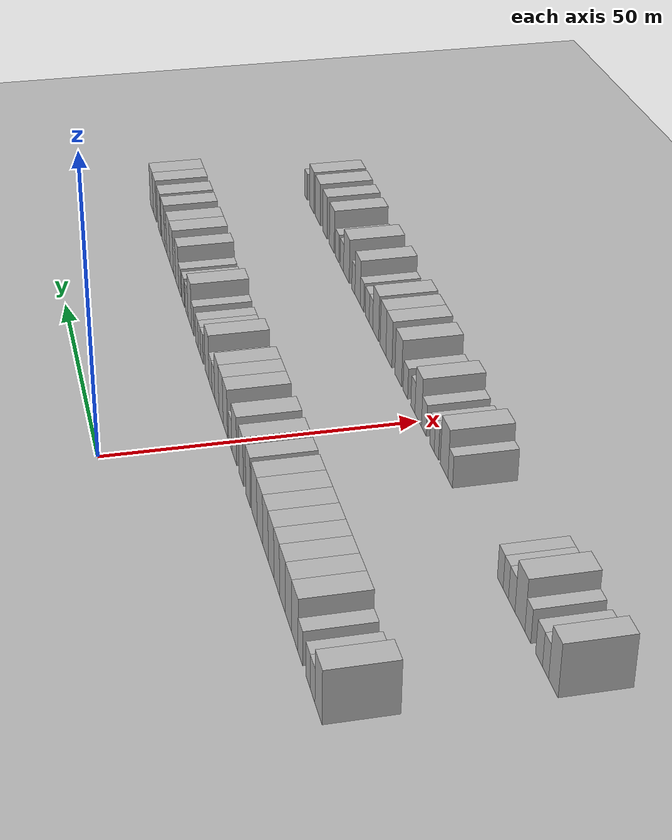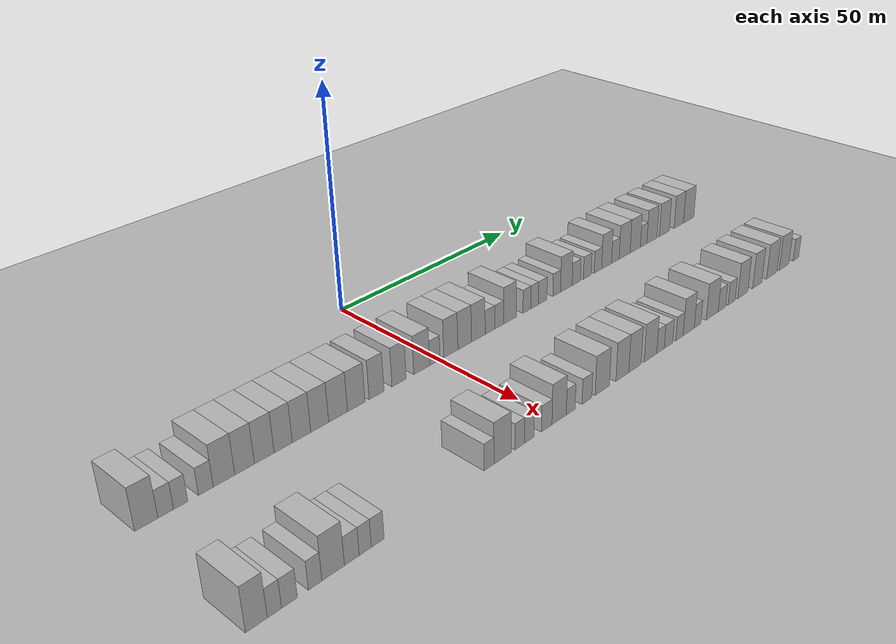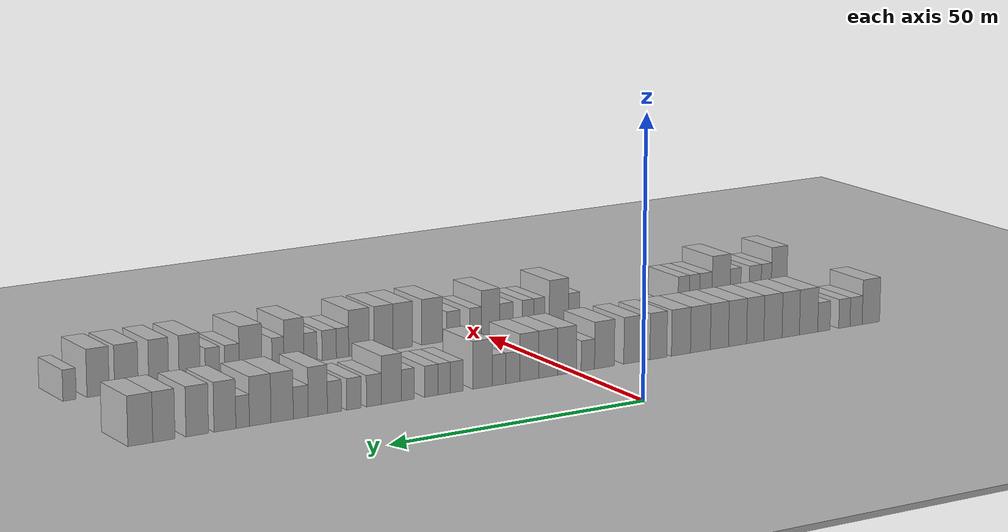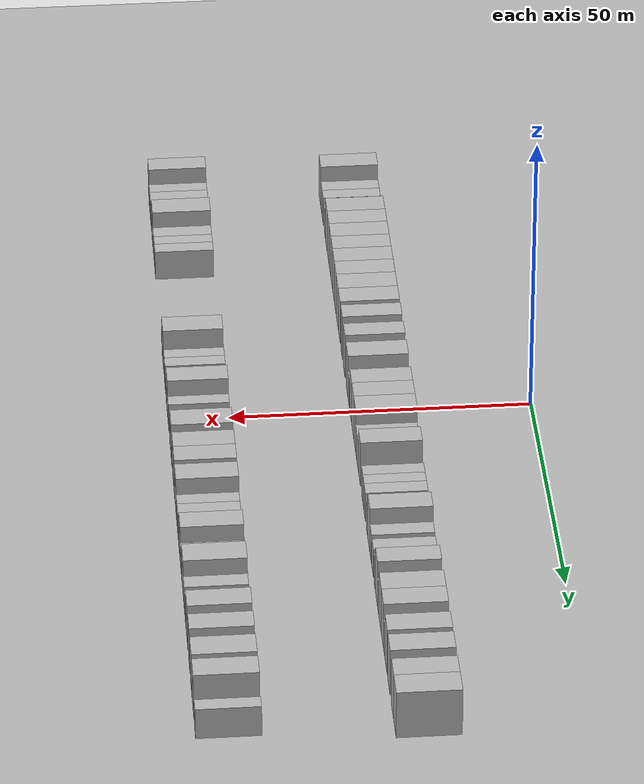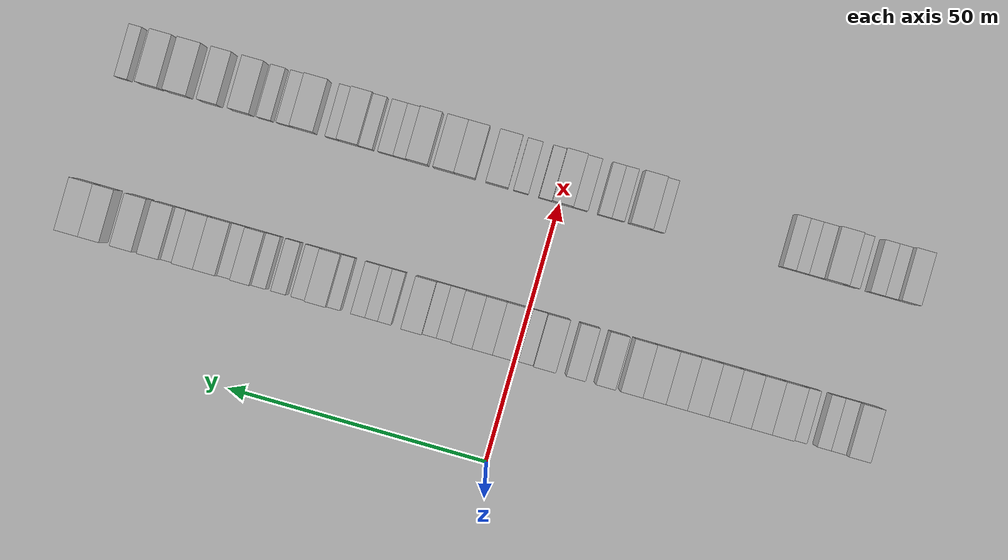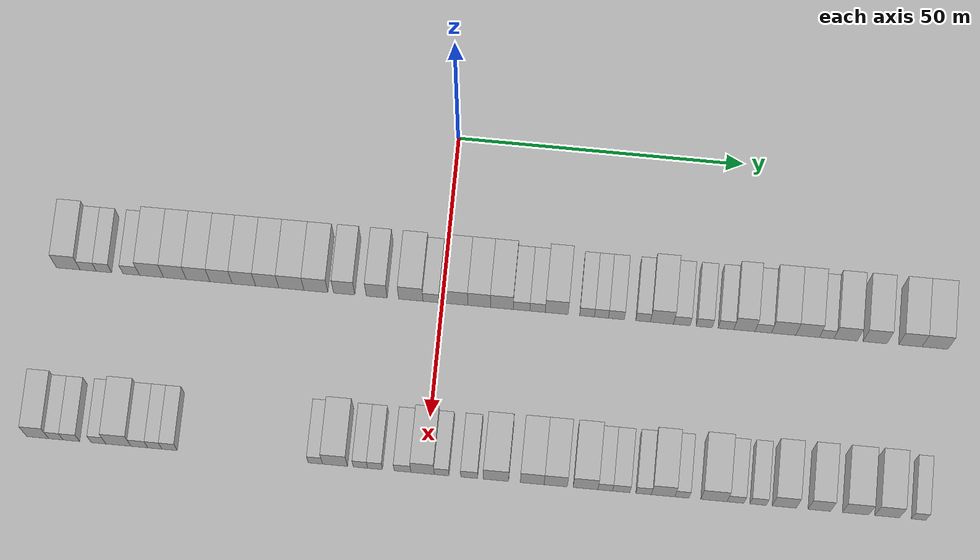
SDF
<sdf version="1.6">
 <world name="default">
  <include><name>ground_plane_1</name><uri>model://HANNAS_ground_plane</uri></include>
  <include>
   <name>ground_plane_2</name>
   <uri>model://HANNAS_ground_plane</uri>
   <pose>100 0 0  0 0 0</pose>
  </include>
  <model name="building_41">
   <static>1</static>
   <pose>25.0000 -65.0184 0 0.000000 0.000000 0.000000</pose>
   <link name="link">
    <pose>0 0 4.50 0 0 0</pose>
    <collision name="collision"><geometry><box><size>10.0000 4.1132 9.0000</size></box></geometry></collision>
    <visual name="visual">
     <cast_shadows>0</cast_shadows>
     <geometry><box><size>10.0000 4.1132 9.0000</size></box></geometry>
     <material>
      <script>
       <uri>model://HANNAS_wall/materials/scripts</uri>
       <uri>model://HANNAS_wall/materials/textures</uri>
       <name>vrc/HANNAS_wall</name>
      </script>
     </material>
    </visual>
   </link>
  </model>
  <model name="building_42">
   <static>1</static>
   <pose>25.0000 -61.5409 0 0.000000 0.000000 0.000000</pose>
   <link name="link">
    <pose>0 0 3.00 0 0 0</pose>
    <collision name="collision"><geometry><box><size>10.0000 2.8418 6.0000</size></box></geometry></collision>
    <visual name="visual">
     <cast_shadows>0</cast_shadows>
     <geometry><box><size>10.0000 2.8418 6.0000</size></box></geometry>
     <material>
      <script>
       <uri>model://HANNAS_wall/materials/scripts</uri>
       <uri>model://HANNAS_wall/materials/textures</uri>
       <name>vrc/HANNAS_wall</name>
      </script>
     </material>
    </visual>
   </link>
  </model>
  <model name="building_43">
   <static>1</static>
   <pose>25.0000 -58.7988 0 0.000000 0.000000 0.000000</pose>
   <link name="link">
    <pose>0 0 3.00 0 0 0</pose>
    <collision name="collision"><geometry><box><size>10.0000 2.6424 6.0000</size></box></geometry></collision>
    <visual name="visual">
     <cast_shadows>0</cast_shadows>
     <geometry><box><size>10.0000 2.6424 6.0000</size></box></geometry>
     <material>
      <script>
       <uri>model://HANNAS_wall/materials/scripts</uri>
       <uri>model://HANNAS_wall/materials/textures</uri>
       <name>vrc/HANNAS_wall</name>
      </script>
     </material>
    </visual>
   </link>
  </model>
  <model name="building_44">
   <static>1</static>
   <pose>25.0000 -54.0521 0 0.000000 0.000000 0.000000</pose>
   <link name="link">
    <pose>0 0 3.00 0 0 0</pose>
    <collision name="collision"><geometry><box><size>10.0000 2.8510 6.0000</size></box></geometry></collision>
    <visual name="visual">
     <cast_shadows>0</cast_shadows>
     <geometry><box><size>10.0000 2.8510 6.0000</size></box></geometry>
     <material>
      <script>
       <uri>model://HANNAS_wall/materials/scripts</uri>
       <uri>model://HANNAS_wall/materials/textures</uri>
       <name>vrc/HANNAS_wall</name>
      </script>
     </material>
    </visual>
   </link>
  </model>
  <model name="building_45">
   <static>1</static>
   <pose>25.0000 -50.5195 0 0.000000 0.000000 0.000000</pose>
   <link name="link">
    <pose>0 0 4.50 0 0 0</pose>
    <collision name="collision"><geometry><box><size>10.0000 4.2141 9.0000</size></box></geometry></collision>
    <visual name="visual">
     <cast_shadows>0</cast_shadows>
     <geometry><box><size>10.0000 4.2141 9.0000</size></box></geometry>
     <material>
      <script>
       <uri>model://HANNAS_wall/materials/scripts</uri>
       <uri>model://HANNAS_wall/materials/textures</uri>
       <name>vrc/HANNAS_wall</name>
      </script>
     </material>
    </visual>
   </link>
  </model>
  <model name="building_46">
   <static>1</static>
   <pose>25.0000 -46.4280 0 0.000000 0.000000 0.000000</pose>
   <link name="link">
    <pose>0 0 4.50 0 0 0</pose>
    <collision name="collision"><geometry><box><size>10.0000 3.9689 9.0000</size></box></geometry></collision>
    <visual name="visual">
     <cast_shadows>0</cast_shadows>
     <geometry><box><size>10.0000 3.9689 9.0000</size></box></geometry>
     <material>
      <script>
       <uri>model://HANNAS_wall/materials/scripts</uri>
       <uri>model://HANNAS_wall/materials/textures</uri>
       <name>vrc/HANNAS_wall</name>
      </script>
     </material>
    </visual>
   </link>
  </model>
  <model name="building_47">
   <static>1</static>
   <pose>25.0000 -42.3883 0 0.000000 0.000000 0.000000</pose>
   <link name="link">
    <pose>0 0 4.50 0 0 0</pose>
    <collision name="collision"><geometry><box><size>10.0000 4.1106 9.0000</size></box></geometry></collision>
    <visual name="visual">
     <cast_shadows>0</cast_shadows>
     <geometry><box><size>10.0000 4.1106 9.0000</size></box></geometry>
     <material>
      <script>
       <uri>model://HANNAS_wall/materials/scripts</uri>
       <uri>model://HANNAS_wall/materials/textures</uri>
       <name>vrc/HANNAS_wall</name>
      </script>
     </material>
    </visual>
   </link>
  </model>
  <model name="building_48">
   <static>1</static>
   <pose>25.0000 -38.3885 0 0.000000 0.000000 0.000000</pose>
   <link name="link">
    <pose>0 0 4.50 0 0 0</pose>
    <collision name="collision"><geometry><box><size>10.0000 3.8890 9.0000</size></box></geometry></collision>
    <visual name="visual">
     <cast_shadows>0</cast_shadows>
     <geometry><box><size>10.0000 3.8890 9.0000</size></box></geometry>
     <material>
      <script>
       <uri>model://HANNAS_wall/materials/scripts</uri>
       <uri>model://HANNAS_wall/materials/textures</uri>
       <name>vrc/HANNAS_wall</name>
      </script>
     </material>
    </visual>
   </link>
  </model>
  <model name="building_49">
   <static>1</static>
   <pose>25.0000 -34.4165 0 0.000000 0.000000 0.000000</pose>
   <link name="link">
    <pose>0 0 4.50 0 0 0</pose>
    <collision name="collision"><geometry><box><size>10.0000 4.0550 9.0000</size></box></geometry></collision>
    <visual name="visual">
     <cast_shadows>0</cast_shadows>
     <geometry><box><size>10.0000 4.0550 9.0000</size></box></geometry>
     <material>
      <script>
       <uri>model://HANNAS_wall/materials/scripts</uri>
       <uri>model://HANNAS_wall/materials/textures</uri>
       <name>vrc/HANNAS_wall</name>
      </script>
     </material>
    </visual>
   </link>
  </model>
  <model name="building_50">
   <static>1</static>
   <pose>25.0000 -30.3690 0 0.000000 0.000000 0.000000</pose>
   <link name="link">
    <pose>0 0 4.50 0 0 0</pose>
    <collision name="collision"><geometry><box><size>10.0000 4.0399 9.0000</size></box></geometry></collision>
    <visual name="visual">
     <cast_shadows>0</cast_shadows>
     <geometry><box><size>10.0000 4.0399 9.0000</size></box></geometry>
     <material>
      <script>
       <uri>model://HANNAS_wall/materials/scripts</uri>
       <uri>model://HANNAS_wall/materials/textures</uri>
       <name>vrc/HANNAS_wall</name>
      </script>
     </material>
    </visual>
   </link>
  </model>
  <model name="building_51">
   <static>1</static>
   <pose>25.0000 -26.1624 0 0.000000 0.000000 0.000000</pose>
   <link name="link">
    <pose>0 0 4.50 0 0 0</pose>
    <collision name="collision"><geometry><box><size>10.0000 4.3732 9.0000</size></box></geometry></collision>
    <visual name="visual">
     <cast_shadows>0</cast_shadows>
     <geometry><box><size>10.0000 4.3732 9.0000</size></box></geometry>
     <material>
      <script>
       <uri>model://HANNAS_wall/materials/scripts</uri>
       <uri>model://HANNAS_wall/materials/textures</uri>
       <name>vrc/HANNAS_wall</name>
      </script>
     </material>
    </visual>
   </link>
  </model>
  <model name="building_52">
   <static>1</static>
   <pose>25.0000 -21.8978 0 0.000000 0.000000 0.000000</pose>
   <link name="link">
    <pose>0 0 4.50 0 0 0</pose>
    <collision name="collision"><geometry><box><size>10.0000 4.1560 9.0000</size></box></geometry></collision>
    <visual name="visual">
     <cast_shadows>0</cast_shadows>
     <geometry><box><size>10.0000 4.1560 9.0000</size></box></geometry>
     <material>
      <script>
       <uri>model://HANNAS_wall/materials/scripts</uri>
       <uri>model://HANNAS_wall/materials/textures</uri>
       <name>vrc/HANNAS_wall</name>
      </script>
     </material>
    </visual>
   </link>
  </model>
  <model name="building_53">
   <static>1</static>
   <pose>25.0000 -16.9798 0 0.000000 0.000000 0.000000</pose>
   <link name="link">
    <pose>0 0 4.50 0 0 0</pose>
    <collision name="collision"><geometry><box><size>10.0000 3.6798 9.0000</size></box></geometry></collision>
    <visual name="visual">
     <cast_shadows>0</cast_shadows>
     <geometry><box><size>10.0000 3.6798 9.0000</size></box></geometry>
     <material>
      <script>
       <uri>model://HANNAS_wall/materials/scripts</uri>
       <uri>model://HANNAS_wall/materials/textures</uri>
       <name>vrc/HANNAS_wall</name>
      </script>
     </material>
    </visual>
   </link>
  </model>
  <model name="building_54">
   <static>1</static>
   <pose>25.0000 -11.3338 0 0.000000 0.000000 0.000000</pose>
   <link name="link">
    <pose>0 0 4.50 0 0 0</pose>
    <collision name="collision"><geometry><box><size>10.0000 3.6122 9.0000</size></box></geometry></collision>
    <visual name="visual">
     <cast_shadows>0</cast_shadows>
     <geometry><box><size>10.0000 3.6122 9.0000</size></box></geometry>
     <material>
      <script>
       <uri>model://HANNAS_wall/materials/scripts</uri>
       <uri>model://HANNAS_wall/materials/textures</uri>
       <name>vrc/HANNAS_wall</name>
      </script>
     </material>
    </visual>
   </link>
  </model>
  <model name="building_55">
   <static>1</static>
   <pose>25.0000 -5.4195 0 0.000000 0.000000 0.000000</pose>
   <link name="link">
    <pose>0 0 4.50 0 0 0</pose>
    <collision name="collision"><geometry><box><size>10.0000 4.2166 9.0000</size></box></geometry></collision>
    <visual name="visual">
     <cast_shadows>0</cast_shadows>
     <geometry><box><size>10.0000 4.2166 9.0000</size></box></geometry>
     <material>
      <script>
       <uri>model://HANNAS_wall/materials/scripts</uri>
       <uri>model://HANNAS_wall/materials/textures</uri>
       <name>vrc/HANNAS_wall</name>
      </script>
     </material>
    </visual>
   </link>
  </model>
  <model name="building_56">
   <static>1</static>
   <pose>25.0000 -1.8960 0 0.000000 0.000000 0.000000</pose>
   <link name="link">
    <pose>0 0 3.00 0 0 0</pose>
    <collision name="collision"><geometry><box><size>10.0000 2.8304 6.0000</size></box></geometry></collision>
    <visual name="visual">
     <cast_shadows>0</cast_shadows>
     <geometry><box><size>10.0000 2.8304 6.0000</size></box></geometry>
     <material>
      <script>
       <uri>model://HANNAS_wall/materials/scripts</uri>
       <uri>model://HANNAS_wall/materials/textures</uri>
       <name>vrc/HANNAS_wall</name>
      </script>
     </material>
    </visual>
   </link>
  </model>
  <model name="building_57">
   <static>1</static>
   <pose>25.0000 2.4853 0 0.000000 0.000000 0.000000</pose>
   <link name="link">
    <pose>0 0 4.50 0 0 0</pose>
    <collision name="collision"><geometry><box><size>10.0000 3.9321 9.0000</size></box></geometry></collision>
    <visual name="visual">
     <cast_shadows>0</cast_shadows>
     <geometry><box><size>10.0000 3.9321 9.0000</size></box></geometry>
     <material>
      <script>
       <uri>model://HANNAS_wall/materials/scripts</uri>
       <uri>model://HANNAS_wall/materials/textures</uri>
       <name>vrc/HANNAS_wall</name>
      </script>
     </material>
    </visual>
   </link>
  </model>
  <model name="building_58">
   <static>1</static>
   <pose>25.0000 6.4000 0 0.000000 0.000000 0.000000</pose>
   <link name="link">
    <pose>0 0 4.50 0 0 0</pose>
    <collision name="collision"><geometry><box><size>10.0000 3.8975 9.0000</size></box></geometry></collision>
    <visual name="visual">
     <cast_shadows>0</cast_shadows>
     <geometry><box><size>10.0000 3.8975 9.0000</size></box></geometry>
     <material>
      <script>
       <uri>model://HANNAS_wall/materials/scripts</uri>
       <uri>model://HANNAS_wall/materials/textures</uri>
       <name>vrc/HANNAS_wall</name>
      </script>
     </material>
    </visual>
   </link>
  </model>
  <model name="building_59">
   <static>1</static>
   <pose>25.0000 10.3311 0 0.000000 0.000000 0.000000</pose>
   <link name="link">
    <pose>0 0 4.50 0 0 0</pose>
    <collision name="collision"><geometry><box><size>10.0000 3.9646 9.0000</size></box></geometry></collision>
    <visual name="visual">
     <cast_shadows>0</cast_shadows>
     <geometry><box><size>10.0000 3.9646 9.0000</size></box></geometry>
     <material>
      <script>
       <uri>model://HANNAS_wall/materials/scripts</uri>
       <uri>model://HANNAS_wall/materials/textures</uri>
       <name>vrc/HANNAS_wall</name>
      </script>
     </material>
    </visual>
   </link>
  </model>
  <model name="building_60">
   <static>1</static>
   <pose>25.0000 13.7487 0 0.000000 0.000000 0.000000</pose>
   <link name="link">
    <pose>0 0 3.00 0 0 0</pose>
    <collision name="collision"><geometry><box><size>10.0000 2.8707 6.0000</size></box></geometry></collision>
    <visual name="visual">
     <cast_shadows>0</cast_shadows>
     <geometry><box><size>10.0000 2.8707 6.0000</size></box></geometry>
     <material>
      <script>
       <uri>model://HANNAS_wall/materials/scripts</uri>
       <uri>model://HANNAS_wall/materials/textures</uri>
       <name>vrc/HANNAS_wall</name>
      </script>
     </material>
    </visual>
   </link>
  </model>
  <model name="building_61">
   <static>1</static>
   <pose>25.0000 16.5236 0 0.000000 0.000000 0.000000</pose>
   <link name="link">
    <pose>0 0 3.00 0 0 0</pose>
    <collision name="collision"><geometry><box><size>10.0000 2.6791 6.0000</size></box></geometry></collision>
    <visual name="visual">
     <cast_shadows>0</cast_shadows>
     <geometry><box><size>10.0000 2.6791 6.0000</size></box></geometry>
     <material>
      <script>
       <uri>model://HANNAS_wall/materials/scripts</uri>
       <uri>model://HANNAS_wall/materials/textures</uri>
       <name>vrc/HANNAS_wall</name>
      </script>
     </material>
    </visual>
   </link>
  </model>
  <model name="building_62">
   <static>1</static>
   <pose>25.0000 19.8373 0 0.000000 0.000000 0.000000</pose>
   <link name="link">
    <pose>0 0 4.50 0 0 0</pose>
    <collision name="collision"><geometry><box><size>10.0000 3.9483 9.0000</size></box></geometry></collision>
    <visual name="visual">
     <cast_shadows>0</cast_shadows>
     <geometry><box><size>10.0000 3.9483 9.0000</size></box></geometry>
     <material>
      <script>
       <uri>model://HANNAS_wall/materials/scripts</uri>
       <uri>model://HANNAS_wall/materials/textures</uri>
       <name>vrc/HANNAS_wall</name>
      </script>
     </material>
    </visual>
   </link>
  </model>
  <model name="building_63">
   <static>1</static>
   <pose>25.0000 25.0874 0 0.000000 0.000000 0.000000</pose>
   <link name="link">
    <pose>0 0 3.00 0 0 0</pose>
    <collision name="collision"><geometry><box><size>10.0000 2.5519 6.0000</size></box></geometry></collision>
    <visual name="visual">
     <cast_shadows>0</cast_shadows>
     <geometry><box><size>10.0000 2.5519 6.0000</size></box></geometry>
     <material>
      <script>
       <uri>model://HANNAS_wall/materials/scripts</uri>
       <uri>model://HANNAS_wall/materials/textures</uri>
       <name>vrc/HANNAS_wall</name>
      </script>
     </material>
    </visual>
   </link>
  </model>
  <model name="building_64">
   <static>1</static>
   <pose>25.0000 27.5762 0 0.000000 0.000000 0.000000</pose>
   <link name="link">
    <pose>0 0 3.00 0 0 0</pose>
    <collision name="collision"><geometry><box><size>10.0000 2.4259 6.0000</size></box></geometry></collision>
    <visual name="visual">
     <cast_shadows>0</cast_shadows>
     <geometry><box><size>10.0000 2.4259 6.0000</size></box></geometry>
     <material>
      <script>
       <uri>model://HANNAS_wall/materials/scripts</uri>
       <uri>model://HANNAS_wall/materials/textures</uri>
       <name>vrc/HANNAS_wall</name>
      </script>
     </material>
    </visual>
   </link>
  </model>
  <model name="building_65">
   <static>1</static>
   <pose>25.0000 30.1573 0 0.000000 0.000000 0.000000</pose>
   <link name="link">
    <pose>0 0 3.00 0 0 0</pose>
    <collision name="collision"><geometry><box><size>10.0000 2.7362 6.0000</size></box></geometry></collision>
    <visual name="visual">
     <cast_shadows>0</cast_shadows>
     <geometry><box><size>10.0000 2.7362 6.0000</size></box></geometry>
     <material>
      <script>
       <uri>model://HANNAS_wall/materials/scripts</uri>
       <uri>model://HANNAS_wall/materials/textures</uri>
       <name>vrc/HANNAS_wall</name>
      </script>
     </material>
    </visual>
   </link>
  </model>
  <model name="building_66">
   <static>1</static>
   <pose>25.0000 34.7877 0 0.000000 0.000000 0.000000</pose>
   <link name="link">
    <pose>0 0 3.00 0 0 0</pose>
    <collision name="collision"><geometry><box><size>10.0000 2.5248 6.0000</size></box></geometry></collision>
    <visual name="visual">
     <cast_shadows>0</cast_shadows>
     <geometry><box><size>10.0000 2.5248 6.0000</size></box></geometry>
     <material>
      <script>
       <uri>model://HANNAS_wall/materials/scripts</uri>
       <uri>model://HANNAS_wall/materials/textures</uri>
       <name>vrc/HANNAS_wall</name>
      </script>
     </material>
    </visual>
   </link>
  </model>
  <model name="building_67">
   <static>1</static>
   <pose>25.0000 38.0421 0 0.000000 0.000000 0.000000</pose>
   <link name="link">
    <pose>0 0 4.50 0 0 0</pose>
    <collision name="collision"><geometry><box><size>10.0000 3.9840 9.0000</size></box></geometry></collision>
    <visual name="visual">
     <cast_shadows>0</cast_shadows>
     <geometry><box><size>10.0000 3.9840 9.0000</size></box></geometry>
     <material>
      <script>
       <uri>model://HANNAS_wall/materials/scripts</uri>
       <uri>model://HANNAS_wall/materials/textures</uri>
       <name>vrc/HANNAS_wall</name>
      </script>
     </material>
    </visual>
   </link>
  </model>
  <model name="building_68">
   <static>1</static>
   <pose>25.0000 41.4769 0 0.000000 0.000000 0.000000</pose>
   <link name="link">
    <pose>0 0 3.00 0 0 0</pose>
    <collision name="collision"><geometry><box><size>10.0000 2.8855 6.0000</size></box></geometry></collision>
    <visual name="visual">
     <cast_shadows>0</cast_shadows>
     <geometry><box><size>10.0000 2.8855 6.0000</size></box></geometry>
     <material>
      <script>
       <uri>model://HANNAS_wall/materials/scripts</uri>
       <uri>model://HANNAS_wall/materials/textures</uri>
       <name>vrc/HANNAS_wall</name>
      </script>
     </material>
    </visual>
   </link>
  </model>
  <model name="building_69">
   <static>1</static>
   <pose>25.0000 45.3318 0 0.000000 0.000000 0.000000</pose>
   <link name="link">
    <pose>0 0 3.00 0 0 0</pose>
    <collision name="collision"><geometry><box><size>10.0000 2.8244 6.0000</size></box></geometry></collision>
    <visual name="visual">
     <cast_shadows>0</cast_shadows>
     <geometry><box><size>10.0000 2.8244 6.0000</size></box></geometry>
     <material>
      <script>
       <uri>model://HANNAS_wall/materials/scripts</uri>
       <uri>model://HANNAS_wall/materials/textures</uri>
       <name>vrc/HANNAS_wall</name>
      </script>
     </material>
    </visual>
   </link>
  </model>
  <model name="building_70">
   <static>1</static>
   <pose>25.0000 49.1006 0 0.000000 0.000000 0.000000</pose>
   <link name="link">
    <pose>0 0 3.00 0 0 0</pose>
    <collision name="collision"><geometry><box><size>10.0000 2.7133 6.0000</size></box></geometry></collision>
    <visual name="visual">
     <cast_shadows>0</cast_shadows>
     <geometry><box><size>10.0000 2.7133 6.0000</size></box></geometry>
     <material>
      <script>
       <uri>model://HANNAS_wall/materials/scripts</uri>
       <uri>model://HANNAS_wall/materials/textures</uri>
       <name>vrc/HANNAS_wall</name>
      </script>
     </material>
    </visual>
   </link>
  </model>
  <model name="building_71">
   <static>1</static>
   <pose>25.0000 52.2937 0 0.000000 0.000000 0.000000</pose>
   <link name="link">
    <pose>0 0 4.50 0 0 0</pose>
    <collision name="collision"><geometry><box><size>10.0000 3.6730 9.0000</size></box></geometry></collision>
    <visual name="visual">
     <cast_shadows>0</cast_shadows>
     <geometry><box><size>10.0000 3.6730 9.0000</size></box></geometry>
     <material>
      <script>
       <uri>model://HANNAS_wall/materials/scripts</uri>
       <uri>model://HANNAS_wall/materials/textures</uri>
       <name>vrc/HANNAS_wall</name>
      </script>
     </material>
    </visual>
   </link>
  </model>
  <model name="building_72">
   <static>1</static>
   <pose>25.0000 55.5416 0 0.000000 0.000000 0.000000</pose>
   <link name="link">
    <pose>0 0 3.00 0 0 0</pose>
    <collision name="collision"><geometry><box><size>10.0000 2.8226 6.0000</size></box></geometry></collision>
    <visual name="visual">
     <cast_shadows>0</cast_shadows>
     <geometry><box><size>10.0000 2.8226 6.0000</size></box></geometry>
     <material>
      <script>
       <uri>model://HANNAS_wall/materials/scripts</uri>
       <uri>model://HANNAS_wall/materials/textures</uri>
       <name>vrc/HANNAS_wall</name>
      </script>
     </material>
    </visual>
   </link>
  </model>
  <model name="building_73">
   <static>1</static>
   <pose>25.0000 59.0542 0 0.000000 0.000000 0.000000</pose>
   <link name="link">
    <pose>0 0 4.50 0 0 0</pose>
    <collision name="collision"><geometry><box><size>10.0000 4.2027 9.0000</size></box></geometry></collision>
    <visual name="visual">
     <cast_shadows>0</cast_shadows>
     <geometry><box><size>10.0000 4.2027 9.0000</size></box></geometry>
     <material>
      <script>
       <uri>model://HANNAS_wall/materials/scripts</uri>
       <uri>model://HANNAS_wall/materials/textures</uri>
       <name>vrc/HANNAS_wall</name>
      </script>
     </material>
    </visual>
   </link>
  </model>
  <model name="building_74">
   <static>1</static>
   <pose>25.0000 63.1708 0 0.000000 0.000000 0.000000</pose>
   <link name="link">
    <pose>0 0 4.50 0 0 0</pose>
    <collision name="collision"><geometry><box><size>10.0000 4.0304 9.0000</size></box></geometry></collision>
    <visual name="visual">
     <cast_shadows>0</cast_shadows>
     <geometry><box><size>10.0000 4.0304 9.0000</size></box></geometry>
     <material>
      <script>
       <uri>model://HANNAS_wall/materials/scripts</uri>
       <uri>model://HANNAS_wall/materials/textures</uri>
       <name>vrc/HANNAS_wall</name>
      </script>
     </material>
    </visual>
   </link>
  </model>
  <model name="building_75">
   <static>1</static>
   <pose>25.0000 66.4420 0 0.000000 0.000000 0.000000</pose>
   <link name="link">
    <pose>0 0 3.00 0 0 0</pose>
    <collision name="collision"><geometry><box><size>10.0000 2.5121 6.0000</size></box></geometry></collision>
    <visual name="visual">
     <cast_shadows>0</cast_shadows>
     <geometry><box><size>10.0000 2.5121 6.0000</size></box></geometry>
     <material>
      <script>
       <uri>model://HANNAS_wall/materials/scripts</uri>
       <uri>model://HANNAS_wall/materials/textures</uri>
       <name>vrc/HANNAS_wall</name>
      </script>
     </material>
    </visual>
   </link>
  </model>
  <model name="building_76">
   <static>1</static>
   <pose>25.0000 69.7202 0 0.000000 0.000000 0.000000</pose>
   <link name="link">
    <pose>0 0 4.50 0 0 0</pose>
    <collision name="collision"><geometry><box><size>10.0000 4.0442 9.0000</size></box></geometry></collision>
    <visual name="visual">
     <cast_shadows>0</cast_shadows>
     <geometry><box><size>10.0000 4.0442 9.0000</size></box></geometry>
     <material>
      <script>
       <uri>model://HANNAS_wall/materials/scripts</uri>
       <uri>model://HANNAS_wall/materials/textures</uri>
       <name>vrc/HANNAS_wall</name>
      </script>
     </material>
    </visual>
   </link>
  </model>
  <model name="building_77">
   <static>1</static>
   <pose>25.0000 74.8003 0 0.000000 0.000000 0.000000</pose>
   <link name="link">
    <pose>0 0 4.50 0 0 0</pose>
    <collision name="collision"><geometry><box><size>10.0000 4.1158 9.0000</size></box></geometry></collision>
    <visual name="visual">
     <cast_shadows>0</cast_shadows>
     <geometry><box><size>10.0000 4.1158 9.0000</size></box></geometry>
     <material>
      <script>
       <uri>model://HANNAS_wall/materials/scripts</uri>
       <uri>model://HANNAS_wall/materials/textures</uri>
       <name>vrc/HANNAS_wall</name>
      </script>
     </material>
    </visual>
   </link>
  </model>
  <model name="building_78">
   <static>1</static>
   <pose>25.0000 80.8600 0 0.000000 0.000000 0.000000</pose>
   <link name="link">
    <pose>0 0 4.50 0 0 0</pose>
    <collision name="collision"><geometry><box><size>10.0000 4.0037 9.0000</size></box></geometry></collision>
    <visual name="visual">
     <cast_shadows>0</cast_shadows>
     <geometry><box><size>10.0000 4.0037 9.0000</size></box></geometry>
     <material>
      <script>
       <uri>model://HANNAS_wall/materials/scripts</uri>
       <uri>model://HANNAS_wall/materials/textures</uri>
       <name>vrc/HANNAS_wall</name>
      </script>
     </material>
    </visual>
   </link>
  </model>
  <model name="building_79">
   <static>1</static>
   <pose>25.0000 85.1022 0 0.000000 0.000000 0.000000</pose>
   <link name="link">
    <pose>0 0 4.50 0 0 0</pose>
    <collision name="collision"><geometry><box><size>10.0000 4.4807 9.0000</size></box></geometry></collision>
    <visual name="visual">
     <cast_shadows>0</cast_shadows>
     <geometry><box><size>10.0000 4.4807 9.0000</size></box></geometry>
     <material>
      <script>
       <uri>model://HANNAS_wall/materials/scripts</uri>
       <uri>model://HANNAS_wall/materials/textures</uri>
       <name>vrc/HANNAS_wall</name>
      </script>
     </material>
    </visual>
   </link>
  </model>
  <model name="building_149">
   <static>1</static>
   <pose>55.0000 -66.2407 0 0.000000 0.000000 0.000000</pose>
   <link name="link">
    <pose>0 0 4.50 0 0 0</pose>
    <collision name="collision"><geometry><box><size>10.0000 3.7456 9.0000</size></box></geometry></collision>
    <visual name="visual">
     <cast_shadows>0</cast_shadows>
     <geometry><box><size>10.0000 3.7456 9.0000</size></box></geometry>
     <material>
      <script>
       <uri>model://HANNAS_wall/materials/scripts</uri>
       <uri>model://HANNAS_wall/materials/textures</uri>
       <name>vrc/HANNAS_wall</name>
      </script>
     </material>
    </visual>
   </link>
  </model>
  <model name="building_150">
   <static>1</static>
   <pose>55.0000 -63.1236 0 0.000000 0.000000 0.000000</pose>
   <link name="link">
    <pose>0 0 3.00 0 0 0</pose>
    <collision name="collision"><geometry><box><size>10.0000 2.4885 6.0000</size></box></geometry></collision>
    <visual name="visual">
     <cast_shadows>0</cast_shadows>
     <geometry><box><size>10.0000 2.4885 6.0000</size></box></geometry>
     <material>
      <script>
       <uri>model://HANNAS_wall/materials/scripts</uri>
       <uri>model://HANNAS_wall/materials/textures</uri>
       <name>vrc/HANNAS_wall</name>
      </script>
     </material>
    </visual>
   </link>
  </model>
  <model name="building_151">
   <static>1</static>
   <pose>55.0000 -60.4736 0 0.000000 0.000000 0.000000</pose>
   <link name="link">
    <pose>0 0 3.00 0 0 0</pose>
    <collision name="collision"><geometry><box><size>10.0000 2.8116 6.0000</size></box></geometry></collision>
    <visual name="visual">
     <cast_shadows>0</cast_shadows>
     <geometry><box><size>10.0000 2.8116 6.0000</size></box></geometry>
     <material>
      <script>
       <uri>model://HANNAS_wall/materials/scripts</uri>
       <uri>model://HANNAS_wall/materials/textures</uri>
       <name>vrc/HANNAS_wall</name>
      </script>
     </material>
    </visual>
   </link>
  </model>
  <model name="building_152">
   <static>1</static>
   <pose>55.0000 -55.8082 0 0.000000 0.000000 0.000000</pose>
   <link name="link">
    <pose>0 0 3.00 0 0 0</pose>
    <collision name="collision"><geometry><box><size>10.0000 2.5190 6.0000</size></box></geometry></collision>
    <visual name="visual">
     <cast_shadows>0</cast_shadows>
     <geometry><box><size>10.0000 2.5190 6.0000</size></box></geometry>
     <material>
      <script>
       <uri>model://HANNAS_wall/materials/scripts</uri>
       <uri>model://HANNAS_wall/materials/textures</uri>
       <name>vrc/HANNAS_wall</name>
      </script>
     </material>
    </visual>
   </link>
  </model>
  <model name="building_153">
   <static>1</static>
   <pose>55.0000 -52.3983 0 0.000000 0.000000 0.000000</pose>
   <link name="link">
    <pose>0 0 4.50 0 0 0</pose>
    <collision name="collision"><geometry><box><size>10.0000 4.3008 9.0000</size></box></geometry></collision>
    <visual name="visual">
     <cast_shadows>0</cast_shadows>
     <geometry><box><size>10.0000 4.3008 9.0000</size></box></geometry>
     <material>
      <script>
       <uri>model://HANNAS_wall/materials/scripts</uri>
       <uri>model://HANNAS_wall/materials/textures</uri>
       <name>vrc/HANNAS_wall</name>
      </script>
     </material>
    </visual>
   </link>
  </model>
  <model name="building_154">
   <static>1</static>
   <pose>55.0000 -48.8020 0 0.000000 0.000000 0.000000</pose>
   <link name="link">
    <pose>0 0 3.00 0 0 0</pose>
    <collision name="collision"><geometry><box><size>10.0000 2.8919 6.0000</size></box></geometry></collision>
    <visual name="visual">
     <cast_shadows>0</cast_shadows>
     <geometry><box><size>10.0000 2.8919 6.0000</size></box></geometry>
     <material>
      <script>
       <uri>model://HANNAS_wall/materials/scripts</uri>
       <uri>model://HANNAS_wall/materials/textures</uri>
       <name>vrc/HANNAS_wall</name>
      </script>
     </material>
    </visual>
   </link>
  </model>
  <model name="building_155">
   <static>1</static>
   <pose>55.0000 -46.1422 0 0.000000 0.000000 0.000000</pose>
   <link name="link">
    <pose>0 0 3.00 0 0 0</pose>
    <collision name="collision"><geometry><box><size>10.0000 2.4277 6.0000</size></box></geometry></collision>
    <visual name="visual">
     <cast_shadows>0</cast_shadows>
     <geometry><box><size>10.0000 2.4277 6.0000</size></box></geometry>
     <material>
      <script>
       <uri>model://HANNAS_wall/materials/scripts</uri>
       <uri>model://HANNAS_wall/materials/textures</uri>
       <name>vrc/HANNAS_wall</name>
      </script>
     </material>
    </visual>
   </link>
  </model>
  <model name="building_156">
   <static>1</static>
   <pose>55.0000 -43.6232 0 0.000000 0.000000 0.000000</pose>
   <link name="link">
    <pose>0 0 3.00 0 0 0</pose>
    <collision name="collision"><geometry><box><size>10.0000 2.6103 6.0000</size></box></geometry></collision>
    <visual name="visual">
     <cast_shadows>0</cast_shadows>
     <geometry><box><size>10.0000 2.6103 6.0000</size></box></geometry>
     <material>
      <script>
       <uri>model://HANNAS_wall/materials/scripts</uri>
       <uri>model://HANNAS_wall/materials/textures</uri>
       <name>vrc/HANNAS_wall</name>
      </script>
     </material>
    </visual>
   </link>
  </model>
  <model name="building_157">
   <static>1</static>
   <pose>55.0000 -18.6590 0 0.000000 0.000000 0.000000</pose>
   <link name="link">
    <pose>0 0 3.00 0 0 0</pose>
    <collision name="collision"><geometry><box><size>10.0000 2.4393 6.0000</size></box></geometry></collision>
    <visual name="visual">
     <cast_shadows>0</cast_shadows>
     <geometry><box><size>10.0000 2.4393 6.0000</size></box></geometry>
     <material>
      <script>
       <uri>model://HANNAS_wall/materials/scripts</uri>
       <uri>model://HANNAS_wall/materials/textures</uri>
       <name>vrc/HANNAS_wall</name>
      </script>
     </material>
    </visual>
   </link>
  </model>
  <model name="building_158">
   <static>1</static>
   <pose>55.0000 -15.3084 0 0.000000 0.000000 0.000000</pose>
   <link name="link">
    <pose>0 0 4.50 0 0 0</pose>
    <collision name="collision"><geometry><box><size>10.0000 4.2619 9.0000</size></box></geometry></collision>
    <visual name="visual">
     <cast_shadows>0</cast_shadows>
     <geometry><box><size>10.0000 4.2619 9.0000</size></box></geometry>
     <material>
      <script>
       <uri>model://HANNAS_wall/materials/scripts</uri>
       <uri>model://HANNAS_wall/materials/textures</uri>
       <name>vrc/HANNAS_wall</name>
      </script>
     </material>
    </visual>
   </link>
  </model>
  <model name="building_159">
   <static>1</static>
   <pose>55.0000 -10.9598 0 0.000000 0.000000 0.000000</pose>
   <link name="link">
    <pose>0 0 3.00 0 0 0</pose>
    <collision name="collision"><geometry><box><size>10.0000 2.4352 6.0000</size></box></geometry></collision>
    <visual name="visual">
     <cast_shadows>0</cast_shadows>
     <geometry><box><size>10.0000 2.4352 6.0000</size></box></geometry>
     <material>
      <script>
       <uri>model://HANNAS_wall/materials/scripts</uri>
       <uri>model://HANNAS_wall/materials/textures</uri>
       <name>vrc/HANNAS_wall</name>
      </script>
     </material>
    </visual>
   </link>
  </model>
  <model name="building_160">
   <static>1</static>
   <pose>55.0000 -8.4753 0 0.000000 0.000000 0.000000</pose>
   <link name="link">
    <pose>0 0 3.00 0 0 0</pose>
    <collision name="collision"><geometry><box><size>10.0000 2.5338 6.0000</size></box></geometry></collision>
    <visual name="visual">
     <cast_shadows>0</cast_shadows>
     <geometry><box><size>10.0000 2.5338 6.0000</size></box></geometry>
     <material>
      <script>
       <uri>model://HANNAS_wall/materials/scripts</uri>
       <uri>model://HANNAS_wall/materials/textures</uri>
       <name>vrc/HANNAS_wall</name>
      </script>
     </material>
    </visual>
   </link>
  </model>
  <model name="building_161">
   <static>1</static>
   <pose>55.0000 -3.7706 0 0.000000 0.000000 0.000000</pose>
   <link name="link">
    <pose>0 0 3.00 0 0 0</pose>
    <collision name="collision"><geometry><box><size>10.0000 2.8758 6.0000</size></box></geometry></collision>
    <visual name="visual">
     <cast_shadows>0</cast_shadows>
     <geometry><box><size>10.0000 2.8758 6.0000</size></box></geometry>
     <material>
      <script>
       <uri>model://HANNAS_wall/materials/scripts</uri>
       <uri>model://HANNAS_wall/materials/textures</uri>
       <name>vrc/HANNAS_wall</name>
      </script>
     </material>
    </visual>
   </link>
  </model>
  <model name="building_162">
   <static>1</static>
   <pose>55.0000 -0.3504 0 0.000000 0.000000 0.000000</pose>
   <link name="link">
    <pose>0 0 4.50 0 0 0</pose>
    <collision name="collision"><geometry><box><size>10.0000 3.9647 9.0000</size></box></geometry></collision>
    <visual name="visual">
     <cast_shadows>0</cast_shadows>
     <geometry><box><size>10.0000 3.9647 9.0000</size></box></geometry>
     <material>
      <script>
       <uri>model://HANNAS_wall/materials/scripts</uri>
       <uri>model://HANNAS_wall/materials/textures</uri>
       <name>vrc/HANNAS_wall</name>
      </script>
     </material>
    </visual>
   </link>
  </model>
  <model name="building_163">
   <static>1</static>
   <pose>55.0000 2.8888 0 0.000000 0.000000 0.000000</pose>
   <link name="link">
    <pose>0 0 3.00 0 0 0</pose>
    <collision name="collision"><geometry><box><size>10.0000 2.5137 6.0000</size></box></geometry></collision>
    <visual name="visual">
     <cast_shadows>0</cast_shadows>
     <geometry><box><size>10.0000 2.5137 6.0000</size></box></geometry>
     <material>
      <script>
       <uri>model://HANNAS_wall/materials/scripts</uri>
       <uri>model://HANNAS_wall/materials/textures</uri>
       <name>vrc/HANNAS_wall</name>
      </script>
     </material>
    </visual>
   </link>
  </model>
  <model name="building_164">
   <static>1</static>
   <pose>55.0000 7.5794 0 0.000000 0.000000 0.000000</pose>
   <link name="link">
    <pose>0 0 3.00 0 0 0</pose>
    <collision name="collision"><geometry><box><size>10.0000 2.8675 6.0000</size></box></geometry></collision>
    <visual name="visual">
     <cast_shadows>0</cast_shadows>
     <geometry><box><size>10.0000 2.8675 6.0000</size></box></geometry>
     <material>
      <script>
       <uri>model://HANNAS_wall/materials/scripts</uri>
       <uri>model://HANNAS_wall/materials/textures</uri>
       <name>vrc/HANNAS_wall</name>
      </script>
     </material>
    </visual>
   </link>
  </model>
  <model name="building_165">
   <static>1</static>
   <pose>55.0000 12.1600 0 0.000000 0.000000 0.000000</pose>
   <link name="link">
    <pose>0 0 4.50 0 0 0</pose>
    <collision name="collision"><geometry><box><size>10.0000 4.2938 9.0000</size></box></geometry></collision>
    <visual name="visual">
     <cast_shadows>0</cast_shadows>
     <geometry><box><size>10.0000 4.2938 9.0000</size></box></geometry>
     <material>
      <script>
       <uri>model://HANNAS_wall/materials/scripts</uri>
       <uri>model://HANNAS_wall/materials/textures</uri>
       <name>vrc/HANNAS_wall</name>
      </script>
     </material>
    </visual>
   </link>
  </model>
  <model name="building_166">
   <static>1</static>
   <pose>55.0000 18.3303 0 0.000000 0.000000 0.000000</pose>
   <link name="link">
    <pose>0 0 4.50 0 0 0</pose>
    <collision name="collision"><geometry><box><size>10.0000 4.0467 9.0000</size></box></geometry></collision>
    <visual name="visual">
     <cast_shadows>0</cast_shadows>
     <geometry><box><size>10.0000 4.0467 9.0000</size></box></geometry>
     <material>
      <script>
       <uri>model://HANNAS_wall/materials/scripts</uri>
       <uri>model://HANNAS_wall/materials/textures</uri>
       <name>vrc/HANNAS_wall</name>
      </script>
     </material>
    </visual>
   </link>
  </model>
  <model name="building_167">
   <static>1</static>
   <pose>55.0000 22.3275 0 0.000000 0.000000 0.000000</pose>
   <link name="link">
    <pose>0 0 4.50 0 0 0</pose>
    <collision name="collision"><geometry><box><size>10.0000 3.9479 9.0000</size></box></geometry></collision>
    <visual name="visual">
     <cast_shadows>0</cast_shadows>
     <geometry><box><size>10.0000 3.9479 9.0000</size></box></geometry>
     <material>
      <script>
       <uri>model://HANNAS_wall/materials/scripts</uri>
       <uri>model://HANNAS_wall/materials/textures</uri>
       <name>vrc/HANNAS_wall</name>
      </script>
     </material>
    </visual>
   </link>
  </model>
  <model name="building_168">
   <static>1</static>
   <pose>55.0000 27.3975 0 0.000000 0.000000 0.000000</pose>
   <link name="link">
    <pose>0 0 4.50 0 0 0</pose>
    <collision name="collision"><geometry><box><size>10.0000 4.1920 9.0000</size></box></geometry></collision>
    <visual name="visual">
     <cast_shadows>0</cast_shadows>
     <geometry><box><size>10.0000 4.1920 9.0000</size></box></geometry>
     <material>
      <script>
       <uri>model://HANNAS_wall/materials/scripts</uri>
       <uri>model://HANNAS_wall/materials/textures</uri>
       <name>vrc/HANNAS_wall</name>
      </script>
     </material>
    </visual>
   </link>
  </model>
  <model name="building_169">
   <static>1</static>
   <pose>55.0000 30.7540 0 0.000000 0.000000 0.000000</pose>
   <link name="link">
    <pose>0 0 3.00 0 0 0</pose>
    <collision name="collision"><geometry><box><size>10.0000 2.5208 6.0000</size></box></geometry></collision>
    <visual name="visual">
     <cast_shadows>0</cast_shadows>
     <geometry><box><size>10.0000 2.5208 6.0000</size></box></geometry>
     <material>
      <script>
       <uri>model://HANNAS_wall/materials/scripts</uri>
       <uri>model://HANNAS_wall/materials/textures</uri>
       <name>vrc/HANNAS_wall</name>
      </script>
     </material>
    </visual>
   </link>
  </model>
  <model name="building_170">
   <static>1</static>
   <pose>55.0000 33.4843 0 0.000000 0.000000 0.000000</pose>
   <link name="link">
    <pose>0 0 3.00 0 0 0</pose>
    <collision name="collision"><geometry><box><size>10.0000 2.9399 6.0000</size></box></geometry></collision>
    <visual name="visual">
     <cast_shadows>0</cast_shadows>
     <geometry><box><size>10.0000 2.9399 6.0000</size></box></geometry>
     <material>
      <script>
       <uri>model://HANNAS_wall/materials/scripts</uri>
       <uri>model://HANNAS_wall/materials/textures</uri>
       <name>vrc/HANNAS_wall</name>
      </script>
     </material>
    </visual>
   </link>
  </model>
  <model name="building_171">
   <static>1</static>
   <pose>55.0000 37.2781 0 0.000000 0.000000 0.000000</pose>
   <link name="link">
    <pose>0 0 3.00 0 0 0</pose>
    <collision name="collision"><geometry><box><size>10.0000 2.6476 6.0000</size></box></geometry></collision>
    <visual name="visual">
     <cast_shadows>0</cast_shadows>
     <geometry><box><size>10.0000 2.6476 6.0000</size></box></geometry>
     <material>
      <script>
       <uri>model://HANNAS_wall/materials/scripts</uri>
       <uri>model://HANNAS_wall/materials/textures</uri>
       <name>vrc/HANNAS_wall</name>
      </script>
     </material>
    </visual>
   </link>
  </model>
  <model name="building_172">
   <static>1</static>
   <pose>55.0000 40.5989 0 0.000000 0.000000 0.000000</pose>
   <link name="link">
    <pose>0 0 4.50 0 0 0</pose>
    <collision name="collision"><geometry><box><size>10.0000 3.9940 9.0000</size></box></geometry></collision>
    <visual name="visual">
     <cast_shadows>0</cast_shadows>
     <geometry><box><size>10.0000 3.9940 9.0000</size></box></geometry>
     <material>
      <script>
       <uri>model://HANNAS_wall/materials/scripts</uri>
       <uri>model://HANNAS_wall/materials/textures</uri>
       <name>vrc/HANNAS_wall</name>
      </script>
     </material>
    </visual>
   </link>
  </model>
  <model name="building_173">
   <static>1</static>
   <pose>55.0000 43.7983 0 0.000000 0.000000 0.000000</pose>
   <link name="link">
    <pose>0 0 3.00 0 0 0</pose>
    <collision name="collision"><geometry><box><size>10.0000 2.4047 6.0000</size></box></geometry></collision>
    <visual name="visual">
     <cast_shadows>0</cast_shadows>
     <geometry><box><size>10.0000 2.4047 6.0000</size></box></geometry>
     <material>
      <script>
       <uri>model://HANNAS_wall/materials/scripts</uri>
       <uri>model://HANNAS_wall/materials/textures</uri>
       <name>vrc/HANNAS_wall</name>
      </script>
     </material>
    </visual>
   </link>
  </model>
  <model name="building_174">
   <static>1</static>
   <pose>55.0000 49.2457 0 0.000000 0.000000 0.000000</pose>
   <link name="link">
    <pose>0 0 4.50 0 0 0</pose>
    <collision name="collision"><geometry><box><size>10.0000 4.4900 9.0000</size></box></geometry></collision>
    <visual name="visual">
     <cast_shadows>0</cast_shadows>
     <geometry><box><size>10.0000 4.4900 9.0000</size></box></geometry>
     <material>
      <script>
       <uri>model://HANNAS_wall/materials/scripts</uri>
       <uri>model://HANNAS_wall/materials/textures</uri>
       <name>vrc/HANNAS_wall</name>
      </script>
     </material>
    </visual>
   </link>
  </model>
  <model name="building_175">
   <static>1</static>
   <pose>55.0000 52.9117 0 0.000000 0.000000 0.000000</pose>
   <link name="link">
    <pose>0 0 3.00 0 0 0</pose>
    <collision name="collision"><geometry><box><size>10.0000 2.8421 6.0000</size></box></geometry></collision>
    <visual name="visual">
     <cast_shadows>0</cast_shadows>
     <geometry><box><size>10.0000 2.8421 6.0000</size></box></geometry>
     <material>
      <script>
       <uri>model://HANNAS_wall/materials/scripts</uri>
       <uri>model://HANNAS_wall/materials/textures</uri>
       <name>vrc/HANNAS_wall</name>
      </script>
     </material>
    </visual>
   </link>
  </model>
  <model name="building_176">
   <static>1</static>
   <pose>55.0000 56.7271 0 0.000000 0.000000 0.000000</pose>
   <link name="link">
    <pose>0 0 3.00 0 0 0</pose>
    <collision name="collision"><geometry><box><size>10.0000 2.7886 6.0000</size></box></geometry></collision>
    <visual name="visual">
     <cast_shadows>0</cast_shadows>
     <geometry><box><size>10.0000 2.7886 6.0000</size></box></geometry>
     <material>
      <script>
       <uri>model://HANNAS_wall/materials/scripts</uri>
       <uri>model://HANNAS_wall/materials/textures</uri>
       <name>vrc/HANNAS_wall</name>
      </script>
     </material>
    </visual>
   </link>
  </model>
  <model name="building_177">
   <static>1</static>
   <pose>55.0000 61.1640 0 0.000000 0.000000 0.000000</pose>
   <link name="link">
    <pose>0 0 4.50 0 0 0</pose>
    <collision name="collision"><geometry><box><size>10.0000 4.0852 9.0000</size></box></geometry></collision>
    <visual name="visual">
     <cast_shadows>0</cast_shadows>
     <geometry><box><size>10.0000 4.0852 9.0000</size></box></geometry>
     <material>
      <script>
       <uri>model://HANNAS_wall/materials/scripts</uri>
       <uri>model://HANNAS_wall/materials/textures</uri>
       <name>vrc/HANNAS_wall</name>
      </script>
     </material>
    </visual>
   </link>
  </model>
  <model name="building_178">
   <static>1</static>
   <pose>55.0000 67.1165 0 0.000000 0.000000 0.000000</pose>
   <link name="link">
    <pose>0 0 4.50 0 0 0</pose>
    <collision name="collision"><geometry><box><size>10.0000 3.8199 9.0000</size></box></geometry></collision>
    <visual name="visual">
     <cast_shadows>0</cast_shadows>
     <geometry><box><size>10.0000 3.8199 9.0000</size></box></geometry>
     <material>
      <script>
       <uri>model://HANNAS_wall/materials/scripts</uri>
       <uri>model://HANNAS_wall/materials/textures</uri>
       <name>vrc/HANNAS_wall</name>
      </script>
     </material>
    </visual>
   </link>
  </model>
  <model name="building_179">
   <static>1</static>
   <pose>55.0000 73.2667 0 0.000000 0.000000 0.000000</pose>
   <link name="link">
    <pose>0 0 4.50 0 0 0</pose>
    <collision name="collision"><geometry><box><size>10.0000 4.4805 9.0000</size></box></geometry></collision>
    <visual name="visual">
     <cast_shadows>0</cast_shadows>
     <geometry><box><size>10.0000 4.4805 9.0000</size></box></geometry>
     <material>
      <script>
       <uri>model://HANNAS_wall/materials/scripts</uri>
       <uri>model://HANNAS_wall/materials/textures</uri>
       <name>vrc/HANNAS_wall</name>
      </script>
     </material>
    </visual>
   </link>
  </model>
  <model name="building_180">
   <static>1</static>
   <pose>55.0000 78.6045 0 0.000000 0.000000 0.000000</pose>
   <link name="link">
    <pose>0 0 4.50 0 0 0</pose>
    <collision name="collision"><geometry><box><size>10.0000 4.1950 9.0000</size></box></geometry></collision>
    <visual name="visual">
     <cast_shadows>0</cast_shadows>
     <geometry><box><size>10.0000 4.1950 9.0000</size></box></geometry>
     <material>
      <script>
       <uri>model://HANNAS_wall/materials/scripts</uri>
       <uri>model://HANNAS_wall/materials/textures</uri>
       <name>vrc/HANNAS_wall</name>
      </script>
     </material>
    </visual>
   </link>
  </model>
  <model name="building_181">
   <static>1</static>
   <pose>55.0000 83.9385 0 0.000000 0.000000 0.000000</pose>
   <link name="link">
    <pose>0 0 3.00 0 0 0</pose>
    <collision name="collision"><geometry><box><size>10.0000 2.4730 6.0000</size></box></geometry></collision>
    <visual name="visual">
     <cast_shadows>0</cast_shadows>
     <geometry><box><size>10.0000 2.4730 6.0000</size></box></geometry>
     <material>
      <script>
       <uri>model://HANNAS_wall/materials/scripts</uri>
       <uri>model://HANNAS_wall/materials/textures</uri>
       <name>vrc/HANNAS_wall</name>
      </script>
     </material>
    </visual>
   </link>
  </model>
 </world>
</sdf>
